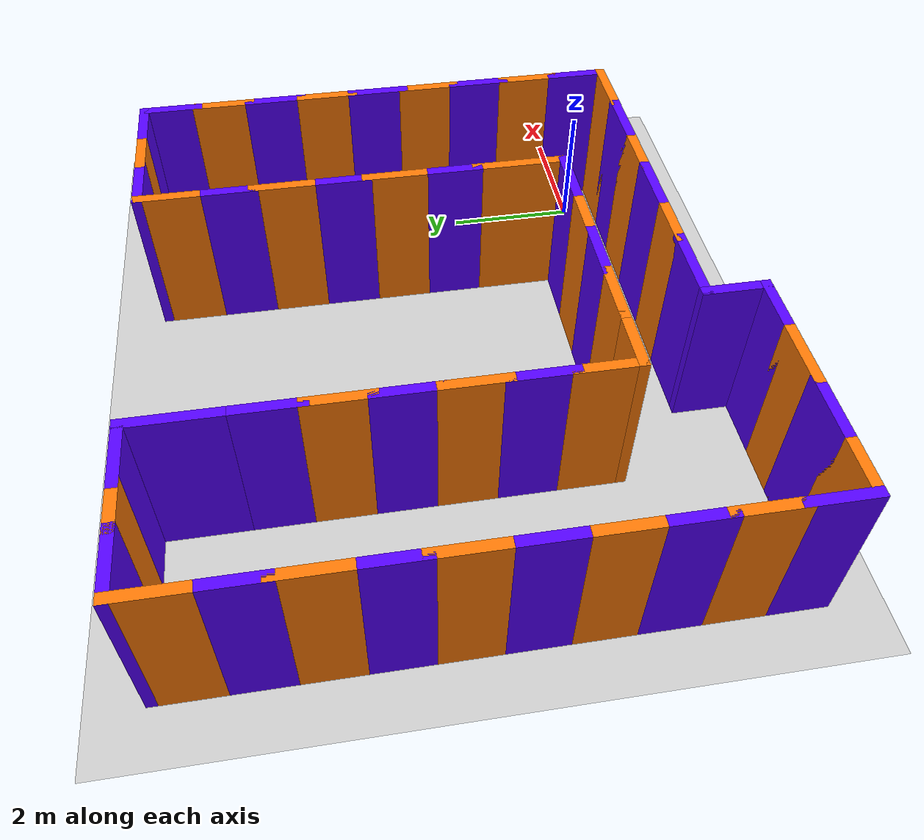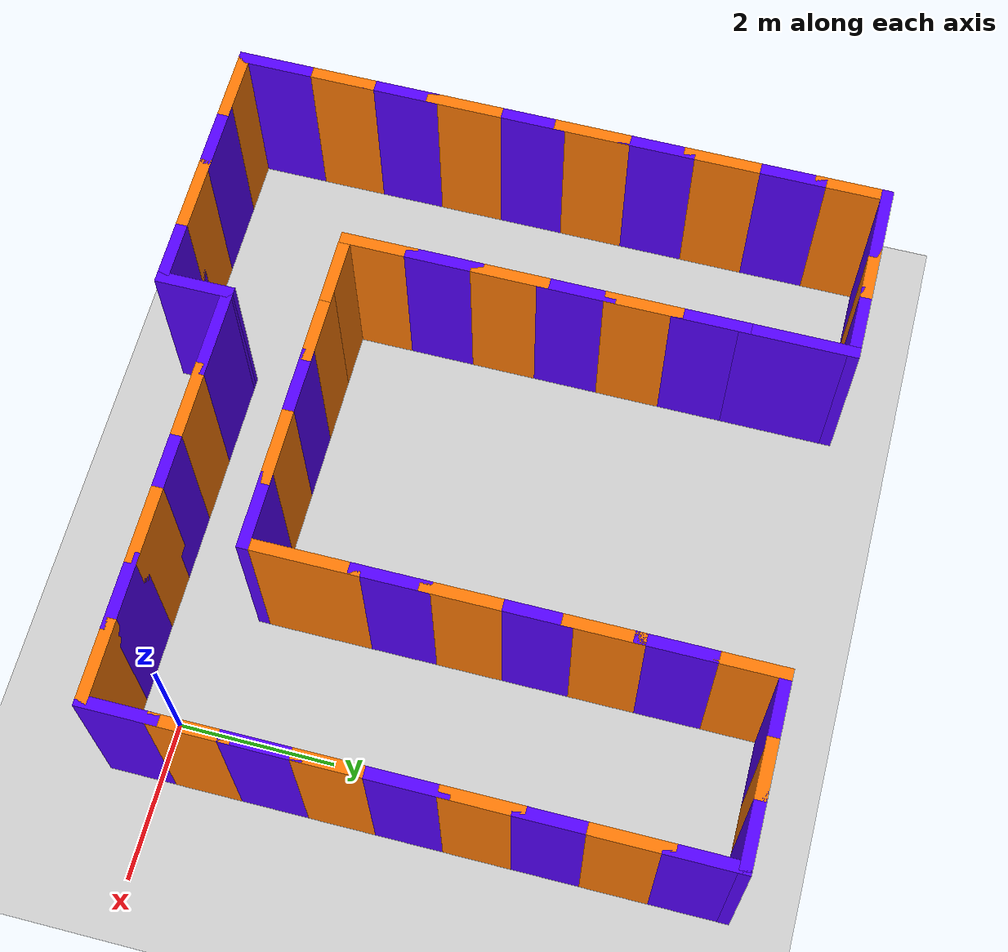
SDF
<sdf version="1.6">
 <world name="default">
  <light name="sun" type="directional">
   <pose>0 0 10 0 -0 0</pose>
   <diffuse>0.8 0.8 0.8 1</diffuse>
   <specular>0.2 0.2 0.2 1</specular>
   <attenuation>
    <range>1000</range>
    <constant>0.9</constant>
    <linear>0.01</linear>
    <quadratic>0.001</quadratic>
   </attenuation>
   <direction>-0.5 0.1 -0.9</direction>
  </light>
  <model name="ground_plane">
   <static>1</static>
   <link name="link">
    <collision name="collision">
     <geometry><plane><normal>0 0 1</normal><size>100 100</size></plane></geometry>
     <surface>
      <contact><collide_bitmask>65535</collide_bitmask></contact>
      <friction><ode><mu>100</mu><mu2>50</mu2></ode></friction>
     </surface>
    </collision>
    <visual name="visual">
     <cast_shadows>0</cast_shadows>
     <geometry><plane><normal>0 0 1</normal><size>100 100</size></plane></geometry>
     <material>
      <script><uri>file://media/materials/scripts/gazebo.material</uri><name>Gazebo/Grey</name></script>
     </material>
    </visual>
   </link>
  </model>
  <gravity>0 0 -9.8</gravity>
  <magnetic_field>6e-06 2.3e-05 -4.2e-05</magnetic_field>
  <atmosphere type="adiabatic"/>
  <physics name="default_physics" default="0" type="ode">
   <max_step_size>0.001</max_step_size>
   <real_time_factor>1</real_time_factor>
   <real_time_update_rate>1000</real_time_update_rate>
  </physics>
  <scene><ambient>0.4 0.4 0.4 1</ambient><background>0.7 0.7 0.7 1</background><shadows>1</shadows></scene>
  <spherical_coordinates>
   <surface_model>EARTH_WGS84</surface_model>
   <latitude_deg>0</latitude_deg>
   <longitude_deg>0</longitude_deg>
   <elevation>0</elevation>
   <heading_deg>0</heading_deg>
  </spherical_coordinates>
  <model name="MyWorld3">
   <pose>-3.775 2.82 0 0 -0 0</pose>
   <link name="Wall_10">
    <collision name="Wall_10_Collision">
     <geometry><box><size>1 0.15 2.5</size></box></geometry>
     <pose>0 0 1.25 0 -0 0</pose>
    </collision>
    <visual name="Wall_10_Visual">
     <pose>0 0 1.25 0 -0 0</pose>
     <geometry><box><size>1 0.15 2.5</size></box></geometry>
     <material>
      <script><uri>file://media/materials/scripts/gazebo.material</uri><name>Gazebo/Grey</name></script>
      <ambient>0.333333 0 1 1</ambient>
     </material>
     <meta><layer>0</layer></meta>
    </visual>
    <pose>4.425 3.825 0 0 -0 1.5708</pose>
   </link>
   <link name="Wall_11">
    <collision name="Wall_11_Collision">
     <geometry><box><size>1 0.15 2.5</size></box></geometry>
     <pose>0 0 1.25 0 -0 0</pose>
    </collision>
    <visual name="Wall_11_Visual">
     <pose>0 0 1.25 0 -0 0</pose>
     <geometry><box><size>1 0.15 2.5</size></box></geometry>
     <material>
      <script><uri>file://media/materials/scripts/gazebo.material</uri><name>Gazebo/Grey</name></script>
      <ambient>0.333333 0 1 1</ambient>
     </material>
     <meta><layer>0</layer></meta>
    </visual>
    <pose>4 4.25 0 0 -0 3.14159</pose>
   </link>
   <link name="Wall_12">
    <collision name="Wall_12_Collision">
     <geometry><box><size>0.75 0.15 2.5</size></box></geometry>
     <pose>0 0 1.25 0 -0 0</pose>
    </collision>
    <visual name="Wall_12_Visual">
     <pose>0 0 1.25 0 -0 0</pose>
     <geometry><box><size>0.75 0.15 2.5</size></box></geometry>
     <material>
      <script><uri>file://media/materials/scripts/gazebo.material</uri><name>Gazebo/Grey</name></script>
      <ambient>0.996078 0.47451 0.0196078 1</ambient>
     </material>
     <meta><layer>0</layer></meta>
    </visual>
    <pose>3.275 4.25 0 0 -0 3.14159</pose>
   </link>
   <link name="Wall_13">
    <collision name="Wall_13_Collision">
     <geometry><box><size>1 0.15 2.5</size></box></geometry>
     <pose>0 0 1.25 0 -0 0</pose>
    </collision>
    <visual name="Wall_13_Visual">
     <pose>0 0 1.25 0 -0 0</pose>
     <geometry><box><size>1 0.15 2.5</size></box></geometry>
     <material>
      <script><uri>file://media/materials/scripts/gazebo.material</uri><name>Gazebo/Grey</name></script>
      <ambient>0.333333 0 1 1</ambient>
     </material>
     <meta><layer>0</layer></meta>
    </visual>
    <pose>2.55 4.25 0 0 -0 3.14159</pose>
   </link>
   <link name="Wall_14">
    <collision name="Wall_14_Collision">
     <geometry><box><size>1 0.15 2.5</size></box></geometry>
     <pose>0 0 1.25 0 -0 0</pose>
    </collision>
    <visual name="Wall_14_Visual">
     <pose>0 0 1.25 0 -0 0</pose>
     <geometry><box><size>1 0.15 2.5</size></box></geometry>
     <material>
      <script><uri>file://media/materials/scripts/gazebo.material</uri><name>Gazebo/Grey</name></script>
      <ambient>0.996078 0.47451 0.0196078 1</ambient>
     </material>
     <meta><layer>0</layer></meta>
    </visual>
    <pose>2.125 3.825 0 0 0 -1.5708</pose>
   </link>
   <link name="Wall_15">
    <collision name="Wall_15_Collision">
     <geometry><box><size>1 0.15 2.5</size></box></geometry>
     <pose>0 0 1.25 0 -0 0</pose>
    </collision>
    <visual name="Wall_15_Visual">
     <pose>0 0 1.25 0 -0 0</pose>
     <geometry><box><size>1 0.15 2.5</size></box></geometry>
     <material>
      <script><uri>file://media/materials/scripts/gazebo.material</uri><name>Gazebo/Grey</name></script>
      <ambient>0.333333 0 1 1</ambient>
     </material>
     <meta><layer>0</layer></meta>
    </visual>
    <pose>2.125 2.975 0 0 0 -1.5708</pose>
   </link>
   <link name="Wall_16">
    <collision name="Wall_16_Collision">
     <geometry><box><size>1 0.15 2.5</size></box></geometry>
     <pose>0 0 1.25 0 -0 0</pose>
    </collision>
    <visual name="Wall_16_Visual">
     <pose>0 0 1.25 0 -0 0</pose>
     <geometry><box><size>1 0.15 2.5</size></box></geometry>
     <material>
      <script><uri>file://media/materials/scripts/gazebo.material</uri><name>Gazebo/Grey</name></script>
      <ambient>0.996078 0.47451 0.0196078 1</ambient>
     </material>
     <meta><layer>0</layer></meta>
    </visual>
    <pose>2.125 2.125 0 0 0 -1.5708</pose>
   </link>
   <link name="Wall_17">
    <collision name="Wall_17_Collision">
     <geometry><box><size>1 0.15 2.5</size></box></geometry>
     <pose>0 0 1.25 0 -0 0</pose>
    </collision>
    <visual name="Wall_17_Visual">
     <pose>0 0 1.25 0 -0 0</pose>
     <geometry><box><size>1 0.15 2.5</size></box></geometry>
     <material>
      <script><uri>file://media/materials/scripts/gazebo.material</uri><name>Gazebo/Grey</name></script>
      <ambient>0.333333 0 1 1</ambient>
     </material>
     <meta><layer>0</layer></meta>
    </visual>
    <pose>2.125 1.275 0 0 0 -1.5708</pose>
   </link>
   <link name="Wall_18">
    <collision name="Wall_18_Collision">
     <geometry><box><size>1 0.15 2.5</size></box></geometry>
     <pose>0 0 1.25 0 -0 0</pose>
    </collision>
    <visual name="Wall_18_Visual">
     <pose>0 0 1.25 0 -0 0</pose>
     <geometry><box><size>1 0.15 2.5</size></box></geometry>
     <material>
      <script><uri>file://media/materials/scripts/gazebo.material</uri><name>Gazebo/Grey</name></script>
      <ambient>0.996078 0.47451 0.0196078 1</ambient>
     </material>
     <meta><layer>0</layer></meta>
    </visual>
    <pose>2.125 0.425 0 0 0 -1.5708</pose>
   </link>
   <link name="Wall_19">
    <collision name="Wall_19_Collision">
     <geometry><box><size>1 0.15 2.5</size></box></geometry>
     <pose>0 0 1.25 0 -0 0</pose>
    </collision>
    <visual name="Wall_19_Visual">
     <pose>0 0 1.25 0 -0 0</pose>
     <geometry><box><size>1 0.15 2.5</size></box></geometry>
     <material>
      <script><uri>file://media/materials/scripts/gazebo.material</uri><name>Gazebo/Grey</name></script>
      <ambient>0.333333 0 1 1</ambient>
     </material>
     <meta><layer>0</layer></meta>
    </visual>
    <pose>2.125 -0.425 0 0 0 -1.5708</pose>
   </link>
   <link name="Wall_2">
    <collision name="Wall_2_Collision">
     <geometry><box><size>1 0.15 2.5</size></box></geometry>
     <pose>0 0 1.25 0 -0 0</pose>
    </collision>
    <visual name="Wall_2_Visual">
     <pose>0 0 1.25 0 -0 0</pose>
     <geometry><box><size>1 0.15 2.5</size></box></geometry>
     <material>
      <script><uri>file://media/materials/scripts/gazebo.material</uri><name>Gazebo/Grey</name></script>
      <ambient>0.333333 0 1 1</ambient>
     </material>
     <meta><layer>0</layer></meta>
    </visual>
    <pose>4.425 -2.975 0 0 -0 1.5708</pose>
   </link>
   <link name="Wall_20">
    <collision name="Wall_20_Collision">
     <geometry><box><size>1.5 0.15 2.5</size></box></geometry>
     <pose>0 0 1.25 0 -0 0</pose>
    </collision>
    <visual name="Wall_20_Visual">
     <pose>0 0 1.25 0 -0 0</pose>
     <geometry><box><size>1.5 0.15 2.5</size></box></geometry>
     <material>
      <script><uri>file://media/materials/scripts/gazebo.material</uri><name>Gazebo/Grey</name></script>
      <ambient>0.996078 0.47451 0.0196078 1</ambient>
     </material>
     <meta><layer>0</layer></meta>
    </visual>
    <pose>2.125 -1.525 0 0 0 -1.5708</pose>
   </link>
   <link name="Wall_21">
    <collision name="Wall_21_Collision">
     <geometry><box><size>1 0.15 2.5</size></box></geometry>
     <pose>0 0 1.25 0 -0 0</pose>
    </collision>
    <visual name="Wall_21_Visual">
     <pose>0 0 1.25 0 -0 0</pose>
     <geometry><box><size>1 0.15 2.5</size></box></geometry>
     <material>
      <script><uri>file://media/materials/scripts/gazebo.material</uri><name>Gazebo/Grey</name></script>
      <ambient>0.333333 0 1 1</ambient>
     </material>
     <meta><layer>0</layer></meta>
    </visual>
    <pose>1.7 -2.2 0 0 -0 3.14159</pose>
   </link>
   <link name="Wall_22">
    <collision name="Wall_22_Collision">
     <geometry><box><size>1 0.15 2.5</size></box></geometry>
     <pose>0 0 1.25 0 -0 0</pose>
    </collision>
    <visual name="Wall_22_Visual">
     <pose>0 0 1.25 0 -0 0</pose>
     <geometry><box><size>1 0.15 2.5</size></box></geometry>
     <material>
      <script><uri>file://media/materials/scripts/gazebo.material</uri><name>Gazebo/Grey</name></script>
      <ambient>0.996078 0.47451 0.0196078 1</ambient>
     </material>
     <meta><layer>0</layer></meta>
    </visual>
    <pose>0.85 -2.2 0 0 -0 3.14159</pose>
   </link>
   <link name="Wall_23">
    <collision name="Wall_23_Collision">
     <geometry><box><size>1 0.15 2.5</size></box></geometry>
     <pose>0 0 1.25 0 -0 0</pose>
    </collision>
    <visual name="Wall_23_Visual">
     <pose>0 0 1.25 0 -0 0</pose>
     <geometry><box><size>1 0.15 2.5</size></box></geometry>
     <material>
      <script><uri>file://media/materials/scripts/gazebo.material</uri><name>Gazebo/Grey</name></script>
      <ambient>0.333333 0 1 1</ambient>
     </material>
     <meta><layer>0</layer></meta>
    </visual>
    <pose>0 -2.2 0 0 -0 3.14159</pose>
   </link>
   <link name="Wall_24">
    <collision name="Wall_24_Collision">
     <geometry><box><size>1 0.15 2.5</size></box></geometry>
     <pose>0 0 1.25 0 -0 0</pose>
    </collision>
    <visual name="Wall_24_Visual">
     <pose>0 0 1.25 0 -0 0</pose>
     <geometry><box><size>1 0.15 2.5</size></box></geometry>
     <material>
      <script><uri>file://media/materials/scripts/gazebo.material</uri><name>Gazebo/Grey</name></script>
      <ambient>0.996078 0.47451 0.0196078 1</ambient>
     </material>
     <meta><layer>0</layer></meta>
    </visual>
    <pose>-0.85 -2.2 0 0 -0 3.14159</pose>
   </link>
   <link name="Wall_25">
    <collision name="Wall_25_Collision">
     <geometry><box><size>1 0.15 2.5</size></box></geometry>
     <pose>0 0 1.25 0 -0 0</pose>
    </collision>
    <visual name="Wall_25_Visual">
     <pose>0 0 1.25 0 -0 0</pose>
     <geometry><box><size>1 0.15 2.5</size></box></geometry>
     <material>
      <script><uri>file://media/materials/scripts/gazebo.material</uri><name>Gazebo/Grey</name></script>
      <ambient>0.996078 0.47451 0.0196078 1</ambient>
     </material>
     <meta><layer>0</layer></meta>
    </visual>
    <pose>-1.7 -2.2 0 0 -0 3.14159</pose>
   </link>
   <link name="Wall_26">
    <collision name="Wall_26_Collision">
     <geometry><box><size>1 0.15 2.5</size></box></geometry>
     <pose>0 0 1.25 0 -0 0</pose>
    </collision>
    <visual name="Wall_26_Visual">
     <pose>0 0 1.25 0 -0 0</pose>
     <geometry><box><size>1 0.15 2.5</size></box></geometry>
     <material>
      <script><uri>file://media/materials/scripts/gazebo.material</uri><name>Gazebo/Grey</name></script>
      <ambient>0.996078 0.47451 0.0196078 1</ambient>
     </material>
     <meta><layer>0</layer></meta>
    </visual>
    <pose>-2.125 -1.775 0 0 -0 1.5708</pose>
   </link>
   <link name="Wall_27">
    <collision name="Wall_27_Collision">
     <geometry><box><size>1 0.15 2.5</size></box></geometry>
     <pose>0 0 1.25 0 -0 0</pose>
    </collision>
    <visual name="Wall_27_Visual">
     <pose>0 0 1.25 0 -0 0</pose>
     <geometry><box><size>1 0.15 2.5</size></box></geometry>
     <material>
      <script><uri>file://media/materials/scripts/gazebo.material</uri><name>Gazebo/Grey</name></script>
      <ambient>0.333333 0 1 1</ambient>
     </material>
     <meta><layer>0</layer></meta>
    </visual>
    <pose>-2.125 -0.925 0 0 -0 1.5708</pose>
   </link>
   <link name="Wall_28">
    <collision name="Wall_28_Collision">
     <geometry><box><size>1 0.15 2.5</size></box></geometry>
     <pose>0 0 1.25 0 -0 0</pose>
    </collision>
    <visual name="Wall_28_Visual">
     <pose>0 0 1.25 0 -0 0</pose>
     <geometry><box><size>1 0.15 2.5</size></box></geometry>
     <material>
      <script><uri>file://media/materials/scripts/gazebo.material</uri><name>Gazebo/Grey</name></script>
      <ambient>0.996078 0.47451 0.0196078 1</ambient>
     </material>
     <meta><layer>0</layer></meta>
    </visual>
    <pose>-2.125 -0.075 0 0 -0 1.5708</pose>
   </link>
   <link name="Wall_29">
    <collision name="Wall_29_Collision">
     <geometry><box><size>1 0.15 2.5</size></box></geometry>
     <pose>0 0 1.25 0 -0 0</pose>
    </collision>
    <visual name="Wall_29_Visual">
     <pose>0 0 1.25 0 -0 0</pose>
     <geometry><box><size>1 0.15 2.5</size></box></geometry>
     <material>
      <script><uri>file://media/materials/scripts/gazebo.material</uri><name>Gazebo/Grey</name></script>
      <ambient>0.333333 0 1 1</ambient>
     </material>
     <meta><layer>0</layer></meta>
    </visual>
    <pose>-2.125 0.775 0 0 -0 1.5708</pose>
   </link>
   <link name="Wall_3">
    <collision name="Wall_3_Collision">
     <geometry><box><size>1 0.15 2.5</size></box></geometry>
     <pose>0 0 1.25 0 -0 0</pose>
    </collision>
    <visual name="Wall_3_Visual">
     <pose>0 0 1.25 0 -0 0</pose>
     <geometry><box><size>1 0.15 2.5</size></box></geometry>
     <material>
      <script><uri>file://media/materials/scripts/gazebo.material</uri><name>Gazebo/Grey</name></script>
      <ambient>0.996078 0.47451 0.0196078 1</ambient>
     </material>
     <meta><layer>0</layer></meta>
    </visual>
    <pose>4.425 -2.125 0 0 -0 1.5708</pose>
   </link>
   <link name="Wall_30">
    <collision name="Wall_30_Collision">
     <geometry><box><size>1 0.15 2.5</size></box></geometry>
     <pose>0 0 1.25 0 -0 0</pose>
    </collision>
    <visual name="Wall_30_Visual">
     <pose>0 0 1.25 0 -0 0</pose>
     <geometry><box><size>1 0.15 2.5</size></box></geometry>
     <material>
      <script><uri>file://media/materials/scripts/gazebo.material</uri><name>Gazebo/Grey</name></script>
      <ambient>0.996078 0.47451 0.0196078 1</ambient>
     </material>
     <meta><layer>0</layer></meta>
    </visual>
    <pose>-2.125 1.625 0 0 -0 1.5708</pose>
   </link>
   <link name="Wall_31">
    <collision name="Wall_31_Collision">
     <geometry><box><size>1 0.15 2.5</size></box></geometry>
     <pose>0 0 1.25 0 -0 0</pose>
    </collision>
    <visual name="Wall_31_Visual">
     <pose>0 0 1.25 0 -0 0</pose>
     <geometry><box><size>1 0.15 2.5</size></box></geometry>
     <material>
      <script><uri>file://media/materials/scripts/gazebo.material</uri><name>Gazebo/Grey</name></script>
      <ambient>0.333333 0 1 1</ambient>
     </material>
     <meta><layer>0</layer></meta>
    </visual>
    <pose>-2.125 2.475 0 0 -0 1.5708</pose>
   </link>
   <link name="Wall_32">
    <collision name="Wall_32_Collision">
     <geometry><box><size>1.5 0.15 2.5</size></box></geometry>
     <pose>0 0 1.25 0 -0 0</pose>
    </collision>
    <visual name="Wall_32_Visual">
     <pose>0 0 1.25 0 -0 0</pose>
     <geometry><box><size>1.5 0.15 2.5</size></box></geometry>
     <material>
      <script><uri>file://media/materials/scripts/gazebo.material</uri><name>Gazebo/Grey</name></script>
      <ambient>0.333333 0 1 1</ambient>
     </material>
     <meta><layer>0</layer></meta>
    </visual>
    <pose>-2.125 3.575 0 0 -0 1.5708</pose>
   </link>
   <link name="Wall_33">
    <collision name="Wall_33_Collision">
     <geometry><box><size>1 0.15 2.5</size></box></geometry>
     <pose>0 0 1.25 0 -0 0</pose>
    </collision>
    <visual name="Wall_33_Visual">
     <pose>0 0 1.25 0 -0 0</pose>
     <geometry><box><size>1 0.15 2.5</size></box></geometry>
     <material>
      <script><uri>file://media/materials/scripts/gazebo.material</uri><name>Gazebo/Grey</name></script>
      <ambient>0.333333 0 1 1</ambient>
     </material>
     <meta><layer>0</layer></meta>
    </visual>
    <pose>-2.55 4.25 0 0 -0 3.14159</pose>
   </link>
   <link name="Wall_34">
    <collision name="Wall_34_Collision">
     <geometry><box><size>0.75 0.15 2.5</size></box></geometry>
     <pose>0 0 1.25 0 -0 0</pose>
    </collision>
    <visual name="Wall_34_Visual">
     <pose>0 0 1.25 0 -0 0</pose>
     <geometry><box><size>0.75 0.15 2.5</size></box></geometry>
     <material>
      <script><uri>file://media/materials/scripts/gazebo.material</uri><name>Gazebo/Grey</name></script>
      <ambient>0.996078 0.47451 0.0196078 1</ambient>
     </material>
     <meta><layer>0</layer></meta>
    </visual>
    <pose>-3.275 4.25 0 0 -0 3.14159</pose>
   </link>
   <link name="Wall_35">
    <collision name="Wall_35_Collision">
     <geometry><box><size>1 0.15 2.5</size></box></geometry>
     <pose>0 0 1.25 0 -0 0</pose>
    </collision>
    <visual name="Wall_35_Visual">
     <pose>0 0 1.25 0 -0 0</pose>
     <geometry><box><size>1 0.15 2.5</size></box></geometry>
     <material>
      <script><uri>file://media/materials/scripts/gazebo.material</uri><name>Gazebo/Grey</name></script>
      <ambient>0.333333 0 1 1</ambient>
     </material>
     <meta><layer>0</layer></meta>
    </visual>
    <pose>-4 4.25 0 0 -0 3.14159</pose>
   </link>
   <link name="Wall_36">
    <collision name="Wall_36_Collision">
     <geometry><box><size>1 0.15 2.5</size></box></geometry>
     <pose>0 0 1.25 0 -0 0</pose>
    </collision>
    <visual name="Wall_36_Visual">
     <pose>0 0 1.25 0 -0 0</pose>
     <geometry><box><size>1 0.15 2.5</size></box></geometry>
     <material>
      <script><uri>file://media/materials/scripts/gazebo.material</uri><name>Gazebo/Grey</name></script>
      <ambient>0.996078 0.47451 0.0196078 1</ambient>
     </material>
     <meta><layer>0</layer></meta>
    </visual>
    <pose>-4.425 3.825 0 0 0 -1.5708</pose>
   </link>
   <link name="Wall_37">
    <collision name="Wall_37_Collision">
     <geometry><box><size>1 0.15 2.5</size></box></geometry>
     <pose>0 0 1.25 0 -0 0</pose>
    </collision>
    <visual name="Wall_37_Visual">
     <pose>0 0 1.25 0 -0 0</pose>
     <geometry><box><size>1 0.15 2.5</size></box></geometry>
     <material>
      <script><uri>file://media/materials/scripts/gazebo.material</uri><name>Gazebo/Grey</name></script>
      <ambient>0.333333 0 1 1</ambient>
     </material>
     <meta><layer>0</layer></meta>
    </visual>
    <pose>-4.425 2.975 0 0 0 -1.5708</pose>
   </link>
   <link name="Wall_38">
    <collision name="Wall_38_Collision">
     <geometry><box><size>1 0.15 2.5</size></box></geometry>
     <pose>0 0 1.25 0 -0 0</pose>
    </collision>
    <visual name="Wall_38_Visual">
     <pose>0 0 1.25 0 -0 0</pose>
     <geometry><box><size>1 0.15 2.5</size></box></geometry>
     <material>
      <script><uri>file://media/materials/scripts/gazebo.material</uri><name>Gazebo/Grey</name></script>
      <ambient>0.996078 0.47451 0.0196078 1</ambient>
     </material>
     <meta><layer>0</layer></meta>
    </visual>
    <pose>-4.425 2.125 0 0 0 -1.5708</pose>
   </link>
   <link name="Wall_39">
    <collision name="Wall_39_Collision">
     <geometry><box><size>1 0.15 2.5</size></box></geometry>
     <pose>0 0 1.25 0 -0 0</pose>
    </collision>
    <visual name="Wall_39_Visual">
     <pose>0 0 1.25 0 -0 0</pose>
     <geometry><box><size>1 0.15 2.5</size></box></geometry>
     <material>
      <script><uri>file://media/materials/scripts/gazebo.material</uri><name>Gazebo/Grey</name></script>
      <ambient>0.333333 0 1 1</ambient>
     </material>
     <meta><layer>0</layer></meta>
    </visual>
    <pose>-4.425 1.275 0 0 0 -1.5708</pose>
   </link>
   <link name="Wall_4">
    <collision name="Wall_4_Collision">
     <geometry><box><size>1 0.15 2.5</size></box></geometry>
     <pose>0 0 1.25 0 -0 0</pose>
    </collision>
    <visual name="Wall_4_Visual">
     <pose>0 0 1.25 0 -0 0</pose>
     <geometry><box><size>1 0.15 2.5</size></box></geometry>
     <material>
      <script><uri>file://media/materials/scripts/gazebo.material</uri><name>Gazebo/Grey</name></script>
      <ambient>0.333333 0 1 1</ambient>
     </material>
     <meta><layer>0</layer></meta>
    </visual>
    <pose>4.425 -1.275 0 0 -0 1.5708</pose>
   </link>
   <link name="Wall_40">
    <collision name="Wall_40_Collision">
     <geometry><box><size>1 0.15 2.5</size></box></geometry>
     <pose>0 0 1.25 0 -0 0</pose>
    </collision>
    <visual name="Wall_40_Visual">
     <pose>0 0 1.25 0 -0 0</pose>
     <geometry><box><size>1 0.15 2.5</size></box></geometry>
     <material>
      <script><uri>file://media/materials/scripts/gazebo.material</uri><name>Gazebo/Grey</name></script>
      <ambient>0.996078 0.47451 0.0196078 1</ambient>
     </material>
     <meta><layer>0</layer></meta>
    </visual>
    <pose>-4.425 0.425 0 0 0 -1.5708</pose>
   </link>
   <link name="Wall_41">
    <collision name="Wall_41_Collision">
     <geometry><box><size>1 0.15 2.5</size></box></geometry>
     <pose>0 0 1.25 0 -0 0</pose>
    </collision>
    <visual name="Wall_41_Visual">
     <pose>0 0 1.25 0 -0 0</pose>
     <geometry><box><size>1 0.15 2.5</size></box></geometry>
     <material>
      <script><uri>file://media/materials/scripts/gazebo.material</uri><name>Gazebo/Grey</name></script>
      <ambient>0.333333 0 1 1</ambient>
     </material>
     <meta><layer>0</layer></meta>
    </visual>
    <pose>-4.425 -0.425 0 0 0 -1.5708</pose>
   </link>
   <link name="Wall_42">
    <collision name="Wall_42_Collision">
     <geometry><box><size>1 0.15 2.5</size></box></geometry>
     <pose>0 0 1.25 0 -0 0</pose>
    </collision>
    <visual name="Wall_42_Visual">
     <pose>0 0 1.25 0 -0 0</pose>
     <geometry><box><size>1 0.15 2.5</size></box></geometry>
     <material>
      <script><uri>file://media/materials/scripts/gazebo.material</uri><name>Gazebo/Grey</name></script>
      <ambient>0.996078 0.47451 0.0196078 1</ambient>
     </material>
     <meta><layer>0</layer></meta>
    </visual>
    <pose>-4.425 -1.275 0 0 0 -1.5708</pose>
   </link>
   <link name="Wall_43">
    <collision name="Wall_43_Collision">
     <geometry><box><size>1 0.15 2.5</size></box></geometry>
     <pose>0 0 1.25 0 -0 0</pose>
    </collision>
    <visual name="Wall_43_Visual">
     <pose>0 0 1.25 0 -0 0</pose>
     <geometry><box><size>1 0.15 2.5</size></box></geometry>
     <material>
      <script><uri>file://media/materials/scripts/gazebo.material</uri><name>Gazebo/Grey</name></script>
      <ambient>0.333333 0 1 1</ambient>
     </material>
     <meta><layer>0</layer></meta>
    </visual>
    <pose>-4.425 -2.125 0 0 0 -1.5708</pose>
   </link>
   <link name="Wall_44">
    <collision name="Wall_44_Collision">
     <geometry><box><size>1 0.15 2.5</size></box></geometry>
     <pose>0 0 1.25 0 -0 0</pose>
    </collision>
    <visual name="Wall_44_Visual">
     <pose>0 0 1.25 0 -0 0</pose>
     <geometry><box><size>1 0.15 2.5</size></box></geometry>
     <material>
      <script><uri>file://media/materials/scripts/gazebo.material</uri><name>Gazebo/Grey</name></script>
      <ambient>0.996078 0.47451 0.0196078 1</ambient>
     </material>
     <meta><layer>0</layer></meta>
    </visual>
    <pose>-4.425 -2.975 0 0 0 -1.5708</pose>
   </link>
   <link name="Wall_45">
    <collision name="Wall_45_Collision">
     <geometry><box><size>1 0.15 2.5</size></box></geometry>
     <pose>0 0 1.25 0 -0 0</pose>
    </collision>
    <visual name="Wall_45_Visual">
     <pose>0 0 1.25 0 -0 0</pose>
     <geometry><box><size>1 0.15 2.5</size></box></geometry>
     <material>
      <script><uri>file://media/materials/scripts/gazebo.material</uri><name>Gazebo/Grey</name></script>
      <ambient>0.333333 0 1 1</ambient>
     </material>
     <meta><layer>0</layer></meta>
    </visual>
    <pose>-4.425 -3.825 0 0 0 -1.5708</pose>
   </link>
   <link name="Wall_46">
    <collision name="Wall_46_Collision">
     <geometry><box><size>1 0.15 2.5</size></box></geometry>
     <pose>0 0 1.25 0 -0 0</pose>
    </collision>
    <visual name="Wall_46_Visual">
     <pose>0 0 1.25 0 -0 0</pose>
     <geometry><box><size>1 0.15 2.5</size></box></geometry>
     <material>
      <script><uri>file://media/materials/scripts/gazebo.material</uri><name>Gazebo/Grey</name></script>
      <ambient>0.996078 0.47451 0.0196078 1</ambient>
     </material>
     <meta><layer>0</layer></meta>
    </visual>
    <pose>-4 -4.25 0 0 -0 0</pose>
   </link>
   <link name="Wall_47">
    <collision name="Wall_47_Collision">
     <geometry><box><size>1 0.15 2.5</size></box></geometry>
     <pose>0 0 1.25 0 -0 0</pose>
    </collision>
    <visual name="Wall_47_Visual">
     <pose>0 0 1.25 0 -0 0</pose>
     <geometry><box><size>1 0.15 2.5</size></box></geometry>
     <material>
      <script><uri>file://media/materials/scripts/gazebo.material</uri><name>Gazebo/Grey</name></script>
      <ambient>0.333333 0 1 1</ambient>
     </material>
     <meta><layer>0</layer></meta>
    </visual>
    <pose>-3.15 -4.25 0 0 -0 0</pose>
   </link>
   <link name="Wall_48">
    <collision name="Wall_48_Collision">
     <geometry><box><size>1 0.15 2.5</size></box></geometry>
     <pose>0 0 1.25 0 -0 0</pose>
    </collision>
    <visual name="Wall_48_Visual">
     <pose>0 0 1.25 0 -0 0</pose>
     <geometry><box><size>1 0.15 2.5</size></box></geometry>
     <material>
      <script><uri>file://media/materials/scripts/gazebo.material</uri><name>Gazebo/Grey</name></script>
      <ambient>0.996078 0.47451 0.0196078 1</ambient>
     </material>
     <meta><layer>0</layer></meta>
    </visual>
    <pose>-2.3 -4.25 0 0 -0 0</pose>
   </link>
   <link name="Wall_49">
    <collision name="Wall_49_Collision">
     <geometry><box><size>1 0.15 2.5</size></box></geometry>
     <pose>0 0 1.25 0 -0 0</pose>
    </collision>
    <visual name="Wall_49_Visual">
     <pose>0 0 1.25 0 -0 0</pose>
     <geometry><box><size>1 0.15 2.5</size></box></geometry>
     <material>
      <script><uri>file://media/materials/scripts/gazebo.material</uri><name>Gazebo/Grey</name></script>
      <ambient>0.333333 0 1 1</ambient>
     </material>
     <meta><layer>0</layer></meta>
    </visual>
    <pose>-1.45 -4.25 0 0 -0 0</pose>
   </link>
   <link name="Wall_5">
    <collision name="Wall_5_Collision">
     <geometry><box><size>1 0.15 2.5</size></box></geometry>
     <pose>0 0 1.25 0 -0 0</pose>
    </collision>
    <visual name="Wall_5_Visual">
     <pose>0 0 1.25 0 -0 0</pose>
     <geometry><box><size>1 0.15 2.5</size></box></geometry>
     <material>
      <script><uri>file://media/materials/scripts/gazebo.material</uri><name>Gazebo/Grey</name></script>
      <ambient>0.996078 0.47451 0.0196078 1</ambient>
     </material>
     <meta><layer>0</layer></meta>
    </visual>
    <pose>4.425 -0.425 0 0 -0 1.5708</pose>
   </link>
   <link name="Wall_50">
    <collision name="Wall_50_Collision">
     <geometry><box><size>1 0.15 2.5</size></box></geometry>
     <pose>0 0 1.25 0 -0 0</pose>
    </collision>
    <visual name="Wall_50_Visual">
     <pose>0 0 1.25 0 -0 0</pose>
     <geometry><box><size>1 0.15 2.5</size></box></geometry>
     <material>
      <script><uri>file://media/materials/scripts/gazebo.material</uri><name>Gazebo/Grey</name></script>
      <ambient>0.333333 0 1 1</ambient>
     </material>
     <meta><layer>0</layer></meta>
    </visual>
    <pose>-1.025 -3.825 0 0 -0 1.5708</pose>
   </link>
   <link name="Wall_51">
    <collision name="Wall_51_Collision">
     <geometry><box><size>1.25 0.15 2.5</size></box></geometry>
     <pose>0 0 1.25 0 -0 0</pose>
    </collision>
    <visual name="Wall_51_Visual">
     <pose>0 0 1.25 0 -0 0</pose>
     <geometry><box><size>1.25 0.15 2.5</size></box></geometry>
     <material>
      <script><uri>file://media/materials/scripts/gazebo.material</uri><name>Gazebo/Grey</name></script>
      <ambient>0.333333 0 1 1</ambient>
     </material>
     <meta><layer>0</layer></meta>
    </visual>
    <pose>-0.475 -3.4 0 0 -0 0</pose>
   </link>
   <link name="Wall_52">
    <collision name="Wall_52_Collision">
     <geometry><box><size>1 0.15 2.5</size></box></geometry>
     <pose>0 0 1.25 0 -0 0</pose>
    </collision>
    <visual name="Wall_52_Visual">
     <pose>0 0 1.25 0 -0 0</pose>
     <geometry><box><size>1 0.15 2.5</size></box></geometry>
     <material>
      <script><uri>file://media/materials/scripts/gazebo.material</uri><name>Gazebo/Grey</name></script>
      <ambient>0.996078 0.47451 0.0196078 1</ambient>
     </material>
     <meta><layer>0</layer></meta>
    </visual>
    <pose>0.5 -3.4 0 0 -0 0</pose>
   </link>
   <link name="Wall_53">
    <collision name="Wall_53_Collision">
     <geometry><box><size>1 0.15 2.5</size></box></geometry>
     <pose>0 0 1.25 0 -0 0</pose>
    </collision>
    <visual name="Wall_53_Visual">
     <pose>0 0 1.25 0 -0 0</pose>
     <geometry><box><size>1 0.15 2.5</size></box></geometry>
     <material>
      <script><uri>file://media/materials/scripts/gazebo.material</uri><name>Gazebo/Grey</name></script>
      <ambient>0.333333 0 1 1</ambient>
     </material>
     <meta><layer>0</layer></meta>
    </visual>
    <pose>1.35 -3.4 0 0 -0 0</pose>
   </link>
   <link name="Wall_54">
    <collision name="Wall_54_Collision">
     <geometry><box><size>1 0.15 2.5</size></box></geometry>
     <pose>0 0 1.25 0 -0 0</pose>
    </collision>
    <visual name="Wall_54_Visual">
     <pose>0 0 1.25 0 -0 0</pose>
     <geometry><box><size>1 0.15 2.5</size></box></geometry>
     <material>
      <script><uri>file://media/materials/scripts/gazebo.material</uri><name>Gazebo/Grey</name></script>
      <ambient>0.996078 0.47451 0.0196078 1</ambient>
     </material>
     <meta><layer>0</layer></meta>
    </visual>
    <pose>2.2 -3.4 0 0 -0 0</pose>
   </link>
   <link name="Wall_55">
    <collision name="Wall_55_Collision">
     <geometry><box><size>1 0.15 2.5</size></box></geometry>
     <pose>0 0 1.25 0 -0 0</pose>
    </collision>
    <visual name="Wall_55_Visual">
     <pose>0 0 1.25 0 -0 0</pose>
     <geometry><box><size>1 0.15 2.5</size></box></geometry>
     <material>
      <script><uri>file://media/materials/scripts/gazebo.material</uri><name>Gazebo/Grey</name></script>
      <ambient>0.333333 0 1 1</ambient>
     </material>
     <meta><layer>0</layer></meta>
    </visual>
    <pose>3.05 -3.4 0 0 -0 0</pose>
   </link>
   <link name="Wall_56">
    <collision name="Wall_56_Collision">
     <geometry><box><size>1.1 0.15 2.5</size></box></geometry>
     <pose>0 0 1.25 0 -0 0</pose>
    </collision>
    <visual name="Wall_56_Visual">
     <pose>0 0 1.25 0 -0 0</pose>
     <geometry><box><size>1.1 0.15 2.5</size></box></geometry>
     <material>
      <script><uri>file://media/materials/scripts/gazebo.material</uri><name>Gazebo/Grey</name></script>
      <ambient>0.996078 0.47451 0.0196078 1</ambient>
     </material>
     <meta><layer>0</layer></meta>
    </visual>
    <pose>3.95 -3.4 0 0 -0 0</pose>
   </link>
   <link name="Wall_6">
    <collision name="Wall_6_Collision">
     <geometry><box><size>1 0.15 2.5</size></box></geometry>
     <pose>0 0 1.25 0 -0 0</pose>
    </collision>
    <visual name="Wall_6_Visual">
     <pose>0 0 1.25 0 -0 0</pose>
     <geometry><box><size>1 0.15 2.5</size></box></geometry>
     <material>
      <script><uri>file://media/materials/scripts/gazebo.material</uri><name>Gazebo/Grey</name></script>
      <ambient>0.333333 0 1 1</ambient>
     </material>
     <meta><layer>0</layer></meta>
    </visual>
    <pose>4.425 0.425 0 0 -0 1.5708</pose>
   </link>
   <link name="Wall_7">
    <collision name="Wall_7_Collision">
     <geometry><box><size>1 0.15 2.5</size></box></geometry>
     <pose>0 0 1.25 0 -0 0</pose>
    </collision>
    <visual name="Wall_7_Visual">
     <pose>0 0 1.25 0 -0 0</pose>
     <geometry><box><size>1 0.15 2.5</size></box></geometry>
     <material>
      <script><uri>file://media/materials/scripts/gazebo.material</uri><name>Gazebo/Grey</name></script>
      <ambient>0.996078 0.47451 0.0196078 1</ambient>
     </material>
     <meta><layer>0</layer></meta>
    </visual>
    <pose>4.425 1.275 0 0 -0 1.5708</pose>
   </link>
   <link name="Wall_8">
    <collision name="Wall_8_Collision">
     <geometry><box><size>1 0.15 2.5</size></box></geometry>
     <pose>0 0 1.25 0 -0 0</pose>
    </collision>
    <visual name="Wall_8_Visual">
     <pose>0 0 1.25 0 -0 0</pose>
     <geometry><box><size>1 0.15 2.5</size></box></geometry>
     <material>
      <script><uri>file://media/materials/scripts/gazebo.material</uri><name>Gazebo/Grey</name></script>
      <ambient>0.333333 0 1 1</ambient>
     </material>
     <meta><layer>0</layer></meta>
    </visual>
    <pose>4.425 2.125 0 0 -0 1.5708</pose>
   </link>
   <link name="Wall_9">
    <collision name="Wall_9_Collision">
     <geometry><box><size>1 0.15 2.5</size></box></geometry>
     <pose>0 0 1.25 0 -0 0</pose>
    </collision>
    <visual name="Wall_9_Visual">
     <pose>0 0 1.25 0 -0 0</pose>
     <geometry><box><size>1 0.15 2.5</size></box></geometry>
     <material>
      <script><uri>file://media/materials/scripts/gazebo.material</uri><name>Gazebo/Grey</name></script>
      <ambient>0.996078 0.47451 0.0196078 1</ambient>
     </material>
     <meta><layer>0</layer></meta>
    </visual>
    <pose>4.425 2.975 0 0 -0 1.5708</pose>
   </link>
   <static>1</static>
  </model>
 </world>
</sdf>
